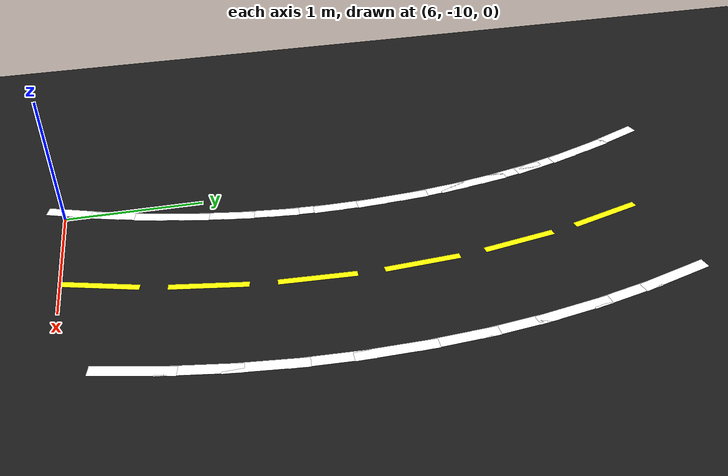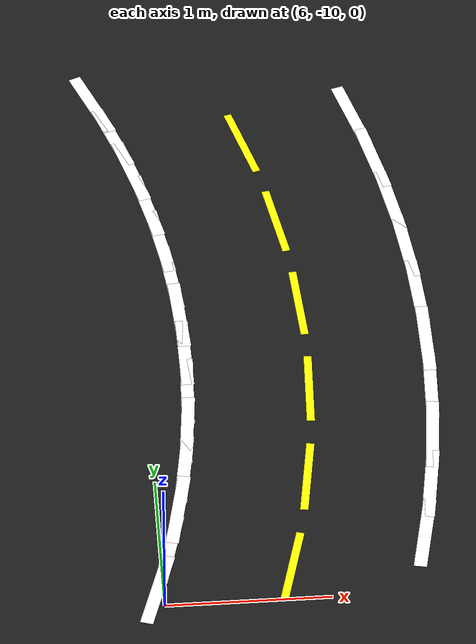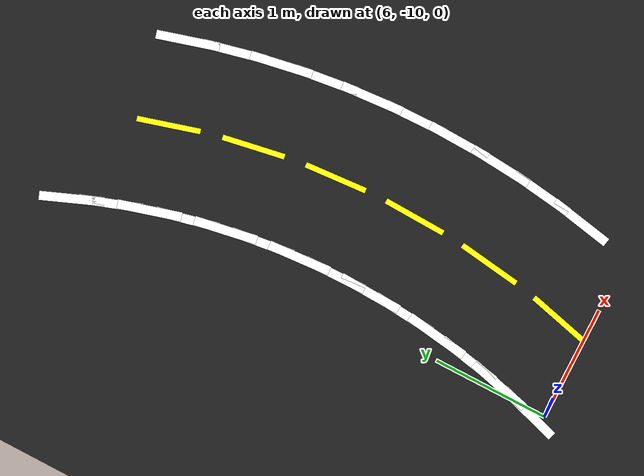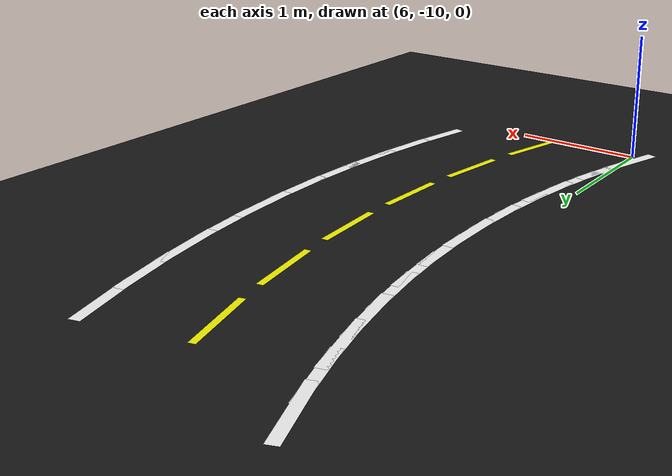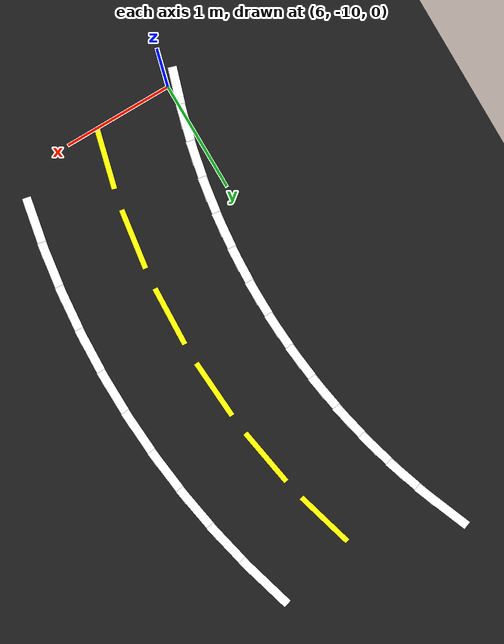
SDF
<sdf version="1.6">
 <world name="lane_world">
  <model name="ground">
   <static>true</static>
   <link name="link">
    <visual name="v">
     <geometry><plane><normal>0 0 1</normal><size>80 80</size></plane></geometry>
     <material><ambient>0.10 0.10 0.10 1</ambient><diffuse>0.10 0.10 0.10 1</diffuse></material>
    </visual>
    <collision name="c"><geometry><plane><normal>0 0 1</normal><size>80 80</size></plane></geometry></collision>
   </link>
  </model>
  <model name="seg_0353">
   <static>true</static>
   <pose>5.7976 -5.6655 0.002 0 0 1.9536</pose>
   <link name="link">
    <visual name="v">
     <geometry><box><size>0.550 0.080 0.0020</size></box></geometry>
     <material><ambient>1 1 1 1</ambient><diffuse>1 1 1 1</diffuse></material>
    </visual>
   </link>
  </model>
  <model name="seg_0356">
   <static>true</static>
   <pose>5.9128 -5.9747 0.002 0 0 1.9008</pose>
   <link name="link">
    <visual name="v">
     <geometry><box><size>0.550 0.080 0.0020</size></box></geometry>
     <material><ambient>1 1 1 1</ambient><diffuse>1 1 1 1</diffuse></material>
    </visual>
   </link>
  </model>
  <model name="seg_0358">
   <static>true</static>
   <pose>6.0114 -6.2896 0.002 0 0 1.8480</pose>
   <link name="link">
    <visual name="v">
     <geometry><box><size>0.550 0.080 0.0020</size></box></geometry>
     <material><ambient>1 1 1 1</ambient><diffuse>1 1 1 1</diffuse></material>
    </visual>
   </link>
  </model>
  <model name="seg_0359">
   <static>true</static>
   <pose>7.4541 -5.8791 0.002 0 0 1.8480</pose>
   <link name="link">
    <visual name="v">
     <geometry><box><size>0.550 0.080 0.0020</size></box></geometry>
     <material><ambient>1 1 1 1</ambient><diffuse>1 1 1 1</diffuse></material>
    </visual>
   </link>
  </model>
  <model name="seg_0360">
   <static>true</static>
   <pose>6.7328 -6.0844 0.002 0 0 1.8480</pose>
   <link name="link">
    <visual name="v">
     <geometry><box><size>0.550 0.05 0.0020</size></box></geometry>
     <material><ambient>1 1 0 1</ambient><diffuse>1 1 0 1</diffuse></material>
    </visual>
   </link>
  </model>
  <model name="seg_0361">
   <static>true</static>
   <pose>6.0933 -6.6092 0.002 0 0 1.7952</pose>
   <link name="link">
    <visual name="v">
     <geometry><box><size>0.550 0.080 0.0020</size></box></geometry>
     <material><ambient>1 1 1 1</ambient><diffuse>1 1 1 1</diffuse></material>
    </visual>
   </link>
  </model>
  <model name="seg_0362">
   <static>true</static>
   <pose>7.5557 -6.2755 0.002 0 0 1.7952</pose>
   <link name="link">
    <visual name="v">
     <geometry><box><size>0.550 0.080 0.0020</size></box></geometry>
     <material><ambient>1 1 1 1</ambient><diffuse>1 1 1 1</diffuse></material>
    </visual>
   </link>
  </model>
  <model name="seg_0363">
   <static>true</static>
   <pose>6.1582 -6.9328 0.002 0 0 1.7424</pose>
   <link name="link">
    <visual name="v">
     <geometry><box><size>0.550 0.080 0.0020</size></box></geometry>
     <material><ambient>1 1 1 1</ambient><diffuse>1 1 1 1</diffuse></material>
    </visual>
   </link>
  </model>
  <model name="seg_0364">
   <static>true</static>
   <pose>7.6362 -6.6766 0.002 0 0 1.7424</pose>
   <link name="link">
    <visual name="v">
     <geometry><box><size>0.550 0.080 0.0020</size></box></geometry>
     <material><ambient>1 1 1 1</ambient><diffuse>1 1 1 1</diffuse></material>
    </visual>
   </link>
  </model>
  <model name="seg_0365">
   <static>true</static>
   <pose>6.8972 -6.8047 0.002 0 0 1.7424</pose>
   <link name="link">
    <visual name="v">
     <geometry><box><size>0.550 0.05 0.0020</size></box></geometry>
     <material><ambient>1 1 0 1</ambient><diffuse>1 1 0 1</diffuse></material>
    </visual>
   </link>
  </model>
  <model name="seg_0366">
   <static>true</static>
   <pose>6.2059 -7.2592 0.002 0 0 1.6896</pose>
   <link name="link">
    <visual name="v">
     <geometry><box><size>0.550 0.080 0.0020</size></box></geometry>
     <material><ambient>1 1 1 1</ambient><diffuse>1 1 1 1</diffuse></material>
    </visual>
   </link>
  </model>
  <model name="seg_0367">
   <static>true</static>
   <pose>7.6954 -7.0815 0.002 0 0 1.6896</pose>
   <link name="link">
    <visual name="v">
     <geometry><box><size>0.550 0.080 0.0020</size></box></geometry>
     <material><ambient>1 1 1 1</ambient><diffuse>1 1 1 1</diffuse></material>
    </visual>
   </link>
  </model>
  <model name="seg_0368">
   <static>true</static>
   <pose>6.2364 -7.5878 0.002 0 0 1.6368</pose>
   <link name="link">
    <visual name="v">
     <geometry><box><size>0.550 0.080 0.0020</size></box></geometry>
     <material><ambient>1 1 1 1</ambient><diffuse>1 1 1 1</diffuse></material>
    </visual>
   </link>
  </model>
  <model name="seg_0369">
   <static>true</static>
   <pose>7.7331 -7.4889 0.002 0 0 1.6368</pose>
   <link name="link">
    <visual name="v">
     <geometry><box><size>0.550 0.080 0.0020</size></box></geometry>
     <material><ambient>1 1 1 1</ambient><diffuse>1 1 1 1</diffuse></material>
    </visual>
   </link>
  </model>
  <model name="seg_0370">
   <static>true</static>
   <pose>6.9848 -7.5383 0.002 0 0 1.6368</pose>
   <link name="link">
    <visual name="v">
     <geometry><box><size>0.550 0.05 0.0020</size></box></geometry>
     <material><ambient>1 1 0 1</ambient><diffuse>1 1 0 1</diffuse></material>
    </visual>
   </link>
  </model>
  <model name="seg_0371">
   <static>true</static>
   <pose>6.2495 -7.9175 0.002 0 0 1.5840</pose>
   <link name="link">
    <visual name="v">
     <geometry><box><size>0.550 0.080 0.0020</size></box></geometry>
     <material><ambient>1 1 1 1</ambient><diffuse>1 1 1 1</diffuse></material>
    </visual>
   </link>
  </model>
  <model name="seg_0372">
   <static>true</static>
   <pose>7.7493 -7.8977 0.002 0 0 1.5840</pose>
   <link name="link">
    <visual name="v">
     <geometry><box><size>0.550 0.080 0.0020</size></box></geometry>
     <material><ambient>1 1 1 1</ambient><diffuse>1 1 1 1</diffuse></material>
    </visual>
   </link>
  </model>
  <model name="seg_0373">
   <static>true</static>
   <pose>6.2451 -8.2474 0.002 0 0 1.5312</pose>
   <link name="link">
    <visual name="v">
     <geometry><box><size>0.550 0.080 0.0020</size></box></geometry>
     <material><ambient>1 1 1 1</ambient><diffuse>1 1 1 1</diffuse></material>
    </visual>
   </link>
  </model>
  <model name="seg_0374">
   <static>true</static>
   <pose>7.7439 -8.3068 0.002 0 0 1.5312</pose>
   <link name="link">
    <visual name="v">
     <geometry><box><size>0.550 0.080 0.0020</size></box></geometry>
     <material><ambient>1 1 1 1</ambient><diffuse>1 1 1 1</diffuse></material>
    </visual>
   </link>
  </model>
  <model name="seg_0375">
   <static>true</static>
   <pose>6.9945 -8.2771 0.002 0 0 1.5312</pose>
   <link name="link">
    <visual name="v">
     <geometry><box><size>0.550 0.05 0.0020</size></box></geometry>
     <material><ambient>1 1 0 1</ambient><diffuse>1 1 0 1</diffuse></material>
    </visual>
   </link>
  </model>
  <model name="seg_0376">
   <static>true</static>
   <pose>6.2233 -8.5767 0.002 0 0 1.4784</pose>
   <link name="link">
    <visual name="v">
     <geometry><box><size>0.550 0.080 0.0020</size></box></geometry>
     <material><ambient>1 1 1 1</ambient><diffuse>1 1 1 1</diffuse></material>
    </visual>
   </link>
  </model>
  <model name="seg_0377">
   <static>true</static>
   <pose>7.7169 -8.7151 0.002 0 0 1.4784</pose>
   <link name="link">
    <visual name="v">
     <geometry><box><size>0.550 0.080 0.0020</size></box></geometry>
     <material><ambient>1 1 1 1</ambient><diffuse>1 1 1 1</diffuse></material>
    </visual>
   </link>
  </model>
  <model name="seg_0378">
   <static>true</static>
   <pose>6.1842 -8.9043 0.002 0 0 1.4256</pose>
   <link name="link">
    <visual name="v">
     <geometry><box><size>0.550 0.080 0.0020</size></box></geometry>
     <material><ambient>1 1 1 1</ambient><diffuse>1 1 1 1</diffuse></material>
    </visual>
   </link>
  </model>
  <model name="seg_0379">
   <static>true</static>
   <pose>7.6684 -9.1213 0.002 0 0 1.4256</pose>
   <link name="link">
    <visual name="v">
     <geometry><box><size>0.550 0.080 0.0020</size></box></geometry>
     <material><ambient>1 1 1 1</ambient><diffuse>1 1 1 1</diffuse></material>
    </visual>
   </link>
  </model>
  <model name="seg_0380">
   <static>true</static>
   <pose>6.9263 -9.0128 0.002 0 0 1.4256</pose>
   <link name="link">
    <visual name="v">
     <geometry><box><size>0.550 0.05 0.0020</size></box></geometry>
     <material><ambient>1 1 0 1</ambient><diffuse>1 1 0 1</diffuse></material>
    </visual>
   </link>
  </model>
  <model name="seg_0381">
   <static>true</static>
   <pose>6.1279 -9.2294 0.002 0 0 1.3728</pose>
   <link name="link">
    <visual name="v">
     <geometry><box><size>0.550 0.080 0.0020</size></box></geometry>
     <material><ambient>1 1 1 1</ambient><diffuse>1 1 1 1</diffuse></material>
    </visual>
   </link>
  </model>
  <model name="seg_0382">
   <static>true</static>
   <pose>7.5986 -9.5245 0.002 0 0 1.3728</pose>
   <link name="link">
    <visual name="v">
     <geometry><box><size>0.550 0.080 0.0020</size></box></geometry>
     <material><ambient>1 1 1 1</ambient><diffuse>1 1 1 1</diffuse></material>
    </visual>
   </link>
  </model>
  <model name="seg_0383">
   <static>true</static>
   <pose>6.0545 -9.5511 0.002 0 0 1.3200</pose>
   <link name="link">
    <visual name="v">
     <geometry><box><size>0.550 0.080 0.0020</size></box></geometry>
     <material><ambient>1 1 1 1</ambient><diffuse>1 1 1 1</diffuse></material>
    </visual>
   </link>
  </model>
  <model name="seg_0385">
   <static>true</static>
   <pose>6.7810 -9.7372 0.002 0 0 1.3200</pose>
   <link name="link">
    <visual name="v">
     <geometry><box><size>0.550 0.05 0.0020</size></box></geometry>
     <material><ambient>1 1 0 1</ambient><diffuse>1 1 0 1</diffuse></material>
    </visual>
   </link>
  </model>
  <model name="seg_0386">
   <static>true</static>
   <pose>5.9642 -9.8685 0.002 0 0 1.2672</pose>
   <link name="link">
    <visual name="v">
     <geometry><box><size>0.550 0.080 0.0020</size></box></geometry>
     <material><ambient>1 1 1 1</ambient><diffuse>1 1 1 1</diffuse></material>
    </visual>
   </link>
  </model>
 </world>
</sdf>
